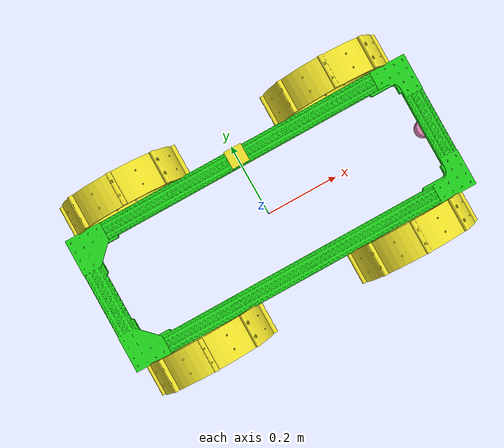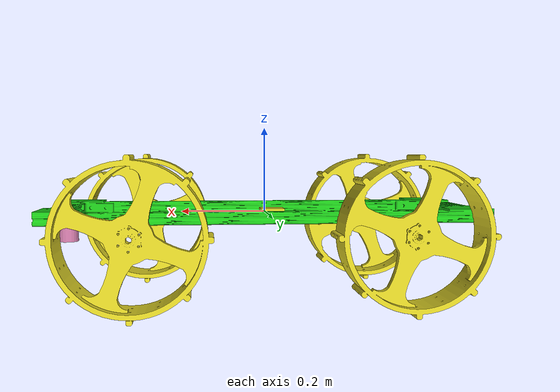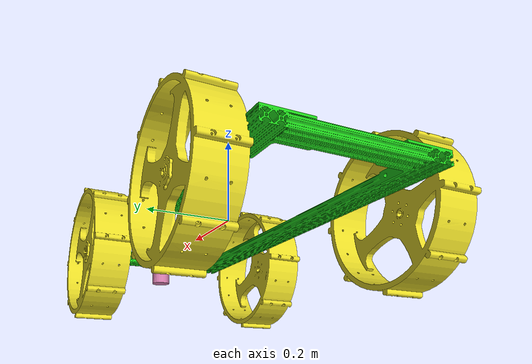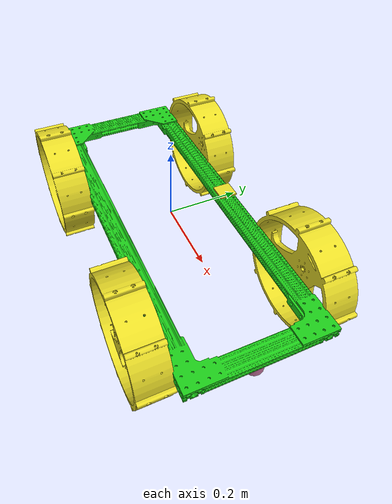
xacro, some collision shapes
<?xml version="1.0"?>
<robot xmlns:xacro="http://www.ros.org/wiki/xacro" name="moony">
<!-- this robot can only go fwd and bwd, no turning -->
<gazebo>
    <plugin name="gazebo_ros_control" filename="libgazebo_ros_control.so">
        <robotNamespace>/moony</robotNamespace>
    </plugin>
</gazebo>

<!-- CONSTANTS -->
<xacro:property name="base_mass" value="4.11" />
<xacro:property name="base_height" value=".03" />
<xacro:property name="wheel_mass" value="2" />
<xacro:property name="wheel_x" value="0.3" />
<xacro:property name="wheel_y" value="${(.38/2)+.04+.01}" />
<!-- y = width/2 of frame + wheel COG to wall + buffer -->
<!-- for XACRO math - SPACES matter -->
<xacro:property name="wheel_z" value="${-0.02 - base_height/2}" />
<xacro:property name="wheel_r" value="0" /> <!-- ${radians(90)}-->
<xacro:property name="wheel_p" value="0" />
<xacro:property name="wheel_y" value="0" />
<xacro:property name="wheel_inertia_ixx" value="0.02" />
<xacro:property name="wheel_inertia_iyy" value="0.02" />
<xacro:property name="wheel_inertia_izz" value="0.04" />
<xacro:property name="wheel_collision_radius" value="0.17" />
<xacro:property name="wheel_collision_length" value="0.09" />
<xacro:property name="right" value="package://moony_description/models/meshes/wheel_left.dae" /> <!-- weird file name changing didn't do anything  -->
<xacro:property name="left" value="package://moony_description/models/meshes/wheel_right.dae" />
<xacro:property name="wheel_effort" value="0.1" />
<xacro:property name="wheel_velocity" value="1" />
<xacro:property name="wheel_static_contact_stiffness" value="100000" />
<xacro:property name="wheel_dynamic_contact_stiffness" value="100000" />
<xacro:property name="wheel_static_friction_coeff" value="10" />
<xacro:property name="wheel_dynamic_friction_coeff" value="10" />

<!-- IMPORTS -->

<!-- MACROS -->
<xacro:macro name="individual_wheel_left" params="depth x y">
   <link name="wheel_${depth}_left_link">
        <inertial>
            <origin rpy="0 0 0" xyz="0 0 0"/>
            <mass value="${wheel_mass}" />
            <inertia ixx="${wheel_inertia_ixx}" ixy="0" ixz="0" iyy="${wheel_inertia_iyy}" iyz="0" izz="${wheel_inertia_izz}"/>
             <!-- values taken from solidworks; the origin is the position of the part
                w.r.t its axes for the second moment of mass values  -->
        </inertial>

        <collision>
            <origin rpy="${radians(90)} 0 0" xyz="0 0 0"/> <!-- pre joint orientation -->
            <geometry>
                <cylinder radius="${wheel_collision_radius}" length="${wheel_collision_length}"/>
            </geometry>
        </collision>

        <visual>
            <origin rpy="0 0 0" xyz="0 0 0"/> <!-- center of the wheel -->
            <geometry>
                <mesh filename="${left}"/>
            </geometry>
        </visual>
    </link>

        <gazebo reference="wheel_${depth}_left_link">
            <kp>100000.0</kp>   <!-- kp: This coefficient sets the static contact stiffness -->
            <kd>100000.0</kd>   <!-- kd: This coefficient sets the dynamic contact stiffness -->
            <mu1>10.0</mu1>     <!-- mu1: The static friction coefficient -->
            <mu2>10.0</mu2>     <!-- mu2: The dynamic friction coefficient. -->
            <material>Gazebo/Yellow</material>
        </gazebo>

    <joint name="wheel_${depth}_left_joint" type="continuous">
        <parent link="base_link"/>
        <child link="wheel_${depth}_left_link"/>
        <origin xyz="${x} ${y} ${wheel_z}" rpy="${wheel_r} ${wheel_p} ${wheel_y}"/> <!-- joint location -->
        <limit effort="${wheel_effort}" velocity="${wheel_velocity}"/>
        <axis xyz="0 1 0"/>
    </joint>

    <transmission name="wheel_tran_${depth}_left">
        <type>transmission_interface/SimpleTransmission</type>
        <joint name="wheel_${depth}_left_joint">
            <hardwareInterface>hardware_interface/VelocityJointInterface</hardwareInterface>
        </joint>
        <actuator name="wheel_motor_${depth}_left">
            <hardwareInterface>VelocityJointInterface</hardwareInterface>
            <mechanicalReduction>1</mechanicalReduction>
        </actuator>
    </transmission>
</xacro:macro>

<xacro:macro name="individual_wheel_right" params="depth x y">
   <link name="wheel_${depth}_right_link">
        <inertial>
            <origin rpy="0 0 0" xyz="0 0 0"/>
            <mass value="${wheel_mass}" />
            <inertia ixx="${wheel_inertia_ixx}" ixy="0" ixz="0" iyy="${wheel_inertia_iyy}" iyz="0" izz="${wheel_inertia_izz}"/>
             <!-- values taken from solidworks; the origin is the position of the part
                w.r.t its axes for the second moment of mass values  -->
        </inertial>

        <collision>
            <origin rpy="${radians(90)} 0 0" xyz="0 0 0"/> <!-- pre joint orientation -->
            <geometry>
                <cylinder radius="${wheel_collision_radius}" length="${wheel_collision_length}"/>
            </geometry>
        </collision>

        <visual>
            <origin rpy="0 0 0" xyz="0 0 0"/> <!-- center of the wheel -->
            <geometry>
                <mesh filename="${right}"/>
            </geometry>
        </visual>
    </link>

        <gazebo reference="wheel_${depth}_right_link">
            <kp>100000.0</kp>   <!-- kp: This coefficient sets the static contact stiffness -->
            <kd>100000.0</kd>   <!-- kd: This coefficient sets the dynamic contact stiffness -->
            <mu1>10.0</mu1>     <!-- mu1: The static friction coefficient -->
            <mu2>10.0</mu2>     <!-- mu2: The dynamic friction coefficient. -->
            <material>Gazebo/Yellow</material>
        </gazebo>

    <joint name="wheel_${depth}_right_joint" type="continuous">
        <parent link="base_link"/>
        <child link="wheel_${depth}_right_link"/>
        <origin xyz="${x} ${y} ${wheel_z}" rpy="${wheel_r} ${wheel_p} ${wheel_y}"/> <!-- joint location -->
        <limit effort="${wheel_effort}" velocity="${wheel_velocity}"/>
        <axis xyz="0 1 0"/>
    </joint>

    <transmission name="wheel_tran_${depth}_right">
        <type>transmission_interface/SimpleTransmission</type>
        <joint name="wheel_${depth}_right_joint">
            <hardwareInterface>hardware_interface/VelocityJointInterface</hardwareInterface>
        </joint>
        <actuator name="wheel_motor_${depth}_right">
            <hardwareInterface>VelocityJointInterface</hardwareInterface>
            <mechanicalReduction>1</mechanicalReduction>
        </actuator>
    </transmission>
</xacro:macro>

<!-- note: units are meters, kilograms, and radians -->

    <link name="base_footprint" >
    </link>

    <joint name="base_joint" type="fixed">
     <origin xyz="0 0 0" rpy="0 0 0" />
     <parent link="base_footprint"/>
     <child link="base_link"/>
   </joint>
        <!-- dummy prevents laser from publishing -->

    <link name="base_link">
        <inertial>
            <origin rpy="0 0 0.1" xyz="0 0 0"/>
            <mass value="${base_mass}" />
            <inertia
            ixx="0.1" ixy="0" ixz="0"
            iyy="0.62" iyz="0"
            izz="0.52"/>
             <!-- values taken from solidworks  -->
        </inertial>
        <collision>
            <origin rpy="0 0 0" xyz="0 0 0"/> <!-- center of the wheel -->
            <geometry>
                <box size="1 .38 ${base_height}"/>
                <!-- ${base_height} , 1-->
            </geometry>
        </collision>
        <visual>
            <origin rpy="0 0 0" xyz="0 0 0"/>
            <geometry>
                <mesh filename="package://moony_description/models/meshes/frame.dae"/>
            </geometry>
        </visual>
    </link>

   <xacro:individual_wheel_left depth="front" x="${1.0 * wheel_x}" y="${1.0 * .24}" />
   <xacro:individual_wheel_left depth="rear" x="${-1.0 * wheel_x}" y="${1.0 * .24}" />
   <xacro:individual_wheel_right depth="front" x="${1.0 * wheel_x}" y="${-1.0 * .24}"/>
   <xacro:individual_wheel_right depth="rear" x="${-1.0 * wheel_x}" y="${-1.0 * .24}"/>

     <!-- Lidar Link -->
  <link name="lidar_link">
    <collision>
      <origin xyz="0 0 ${.05/2}" rpy="0 0 0"/>
      <geometry>
        <cylinder radius="${0.025}" length=".05"/>
      </geometry>
    </collision>

    <visual>
      <origin xyz="0 0 0" rpy="0 0 0"/>
      <geometry>
        <mesh filename="package://moony_description/models/meshes/lidar.dae"/>
      </geometry>
    </visual>

    <inertial>
      <origin xyz="0 0 0" rpy="0 0 0"/>
      <mass value=".077"/>
      <inertia
        ixx=".00007" ixy="0.0" ixz="0.0"
        iyy=".00003" iyz="0.0"
        izz=".00008"/>
    </inertial>
  </link>

    <gazebo reference="lidar_link">
        <kp>100000.0</kp>   <!-- kp: This coefficient sets the static contact stiffness -->
        <kd>100000.0</kd>   <!-- kd: This coefficient sets the dynamic contact stiffness -->
        <mu1>10.0</mu1>     <!-- mu1: The static friction coefficient -->
        <mu2>10.0</mu2>     <!-- mu2: The dynamic friction coefficient. -->
    </gazebo>

    <joint name="lidar_joint" type="fixed">
        <parent link="base_link"/>
        <child link="lidar_link"/>
        <origin xyz=".47 0 ${-0.015 - 0.005/2 -0.001}" rpy="${radians(180)} 0 0"/> <!-- joint location -->
    </joint>

<!-- lidar sensor -->
  <gazebo reference="lidar_link">
    <sensor type="ray" name="front_rplidar_sensor">
      <pose>0 0 0 0 0 0</pose>
      <visualize>true</visualize>
      <update_rate>40</update_rate>
      <ray>
        <scan>
          <horizontal>
            <samples>720</samples>
            <resolution>1</resolution>
            <min_angle>${-radians(360)}</min_angle>
            <max_angle>${radians(360)}</max_angle>
          </horizontal>
        </scan>
        <range>
          <min>0.10</min>
          <max>30.0</max>
          <resolution>0.01</resolution>
        </range>
        <noise>
          <type>gaussian</type>
          <mean>0.0</mean>
          <stddev>0.01</stddev>
        </noise>
      </ray>
      <plugin name="gazebo_ros_front_rplidar_controller" filename="libgazebo_ros_laser.so">
        <topicName>/moony/laser/scan</topicName>
        <frameName>lidar_link</frameName>
      </plugin>
    </sensor>
  </gazebo>

<!-- IMU sensor -->
 <link name="imu_link">
    <collision>
      <origin xyz="0 0 ${.05/2}" rpy="0 0 0"/>
      <geometry>
        <box size="0.05 0.05 0.005"/>
      </geometry>
    </collision>

    <visual>
      <origin xyz="0 0 0" rpy="0 0 0"/>
      <geometry>
        <box size="0.05 0.05 0.005"/>
      </geometry>
    </visual>

    <inertial>
      <origin xyz="0 0 0" rpy="0 0 0"/>
      <mass value=".03"/> <!-- made up -->
      <inertia
        ixx=".00002" ixy="0.0" ixz="0.0"
        iyy=".00002" iyz="0.0"
        izz=".00002"/> <!-- made up -->
    </inertial>
  </link>

    <joint name="imu_joint" type="fixed">
        <parent link="base_link"/>
        <child link="imu_link"/>
        <origin xyz="0 0.17 ${+0.015 + 0.005/2 +0.001}" rpy="0 0 0"/> <!-- joint location -->
    </joint>

  <gazebo reference="imu_link">
    <material>Gazebo/Yellow</material>
    <gravity>true</gravity>
    <sensor name="imu_sensor" type="imu">
      <always_on>true</always_on>
      <update_rate>100</update_rate>
      <visualize>true</visualize>
      <topic>__default_topic__</topic>
      <plugin filename="libgazebo_ros_imu_sensor.so" name="imu_plugin">
        <topicName>/moony/imu</topicName>
        <bodyName>imu_link</bodyName>
        <updateRateHZ>10.0</updateRateHZ>
        <gaussianNoise>0.0</gaussianNoise>
        <xyzOffset>0 0 0</xyzOffset>
        <rpyOffset>0 0 0</rpyOffset>
        <frameName>imu_link</frameName>
        <initialOrientationAsReference>false</initialOrientationAsReference>
      </plugin>
      <pose>0 0 0 0 0 0</pose>
    </sensor>
  </gazebo>
</robot>
